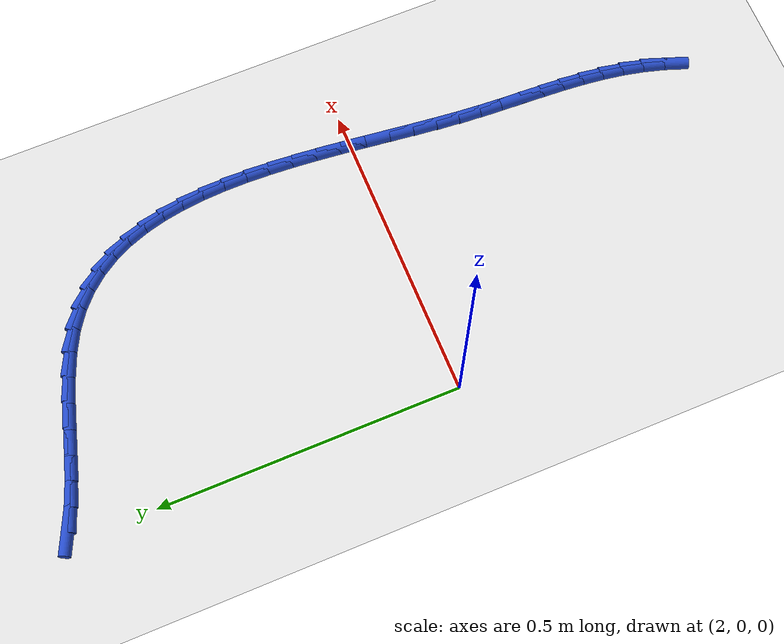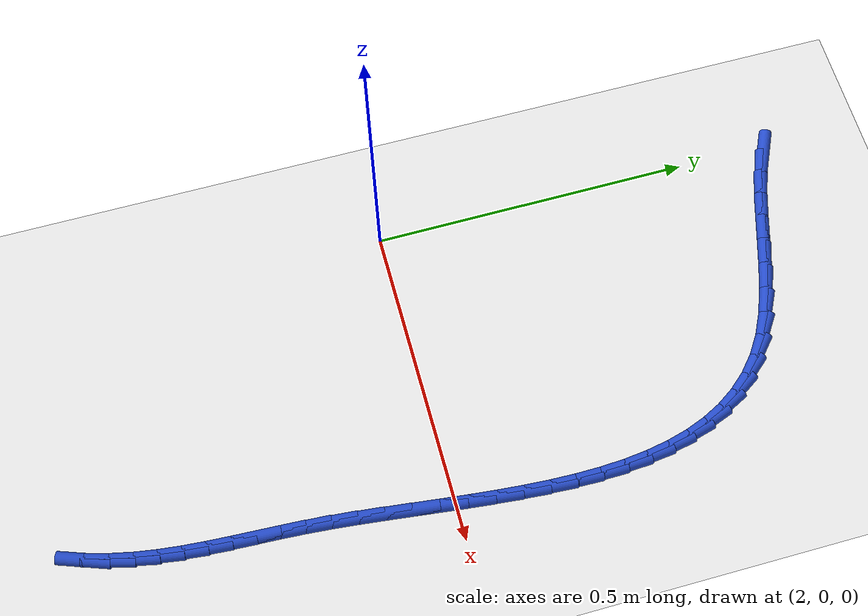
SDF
<sdf version="1.6">
 <world name="default">
  <model name="ground_plane">
   <static>1</static>
   <link name="link">
    <collision name="collision">
     <geometry><plane><normal>0 0 1</normal><size>100 100</size></plane></geometry>
     <surface><friction><ode><mu>100</mu><mu2>50</mu2></ode></friction></surface>
    </collision>
    <visual name="visual">
     <cast_shadows>0</cast_shadows>
     <geometry><plane><normal>0 0 1</normal><size>100 100</size></plane></geometry>
     <material>
      <script><uri>file://media/materials/scripts/gazebo.material</uri><name>Gazebo/WhiteGlow</name></script>
     </material>
    </visual>
   </link>
  </model>
  <model name="line">
   <link name="link_98">
    <pose>2.0180973179045565 0.6346549607675701 0.01 0 1.57 -0.4459626587694435</pose>
    <collision name="collision">
     <geometry><cylinder><radius>0.01</radius><length>0.08</length></cylinder></geometry>
    </collision>
    <visual name="visual">
     <material>
      <script><name>Gazebo/Blue</name><uri>file://media/materials/scripts/gazebo.material</uri></script>
     </material>
     <geometry><cylinder><radius>0.01</radius><length>0.08</length></cylinder></geometry>
    </visual>
   </link>
   <link name="link_99">
    <pose>2.050272561980144 0.6192724493058172 0.01 0 1.57 -0.3610093329036931</pose>
    <collision name="collision">
     <geometry><cylinder><radius>0.01</radius><length>0.08</length></cylinder></geometry>
    </collision>
    <visual name="visual">
     <material>
      <script><name>Gazebo/Blue</name><uri>file://media/materials/scripts/gazebo.material</uri></script>
     </material>
     <geometry><cylinder><radius>0.01</radius><length>0.08</length></cylinder></geometry>
    </visual>
   </link>
   <link name="link_100">
    <pose>2.086365879658592 0.6056452142174706 0.01 0 1.57 -0.3132397381190874</pose>
    <collision name="collision">
     <geometry><cylinder><radius>0.01</radius><length>0.08</length></cylinder></geometry>
    </collision>
    <visual name="visual">
     <material>
      <script><name>Gazebo/Blue</name><uri>file://media/materials/scripts/gazebo.material</uri></script>
     </material>
     <geometry><cylinder><radius>0.01</radius><length>0.08</length></cylinder></geometry>
    </visual>
   </link>
   <link name="link_101">
    <pose>2.1251498153170805 0.593082965775532 0.01 0 1.57 -0.29404023812579166</pose>
    <collision name="collision">
     <geometry><cylinder><radius>0.01</radius><length>0.08</length></cylinder></geometry>
    </collision>
    <visual name="visual">
     <material>
      <script><name>Gazebo/Blue</name><uri>file://media/materials/scripts/gazebo.material</uri></script>
     </material>
     <geometry><cylinder><radius>0.01</radius><length>0.08</length></cylinder></geometry>
    </visual>
   </link>
   <link name="link_102">
    <pose>2.165396913332783 0.5808954142530024 0.01 0 1.57 -0.2995568331293081</pose>
    <collision name="collision">
     <geometry><cylinder><radius>0.01</radius><length>0.08</length></cylinder></geometry>
    </collision>
    <visual name="visual">
     <material>
      <script><name>Gazebo/Blue</name><uri>file://media/materials/scripts/gazebo.material</uri></script>
     </material>
     <geometry><cylinder><radius>0.01</radius><length>0.08</length></cylinder></geometry>
    </visual>
   </link>
   <link name="link_103">
    <pose>2.2058797180828797 0.5683922699228837 0.01 0 1.57 -0.32960012424356866</pose>
    <collision name="collision">
     <geometry><cylinder><radius>0.01</radius><length>0.08</length></cylinder></geometry>
    </collision>
    <visual name="visual">
     <material>
      <script><name>Gazebo/Blue</name><uri>file://media/materials/scripts/gazebo.material</uri></script>
     </material>
     <geometry><cylinder><radius>0.01</radius><length>0.08</length></cylinder></geometry>
    </visual>
   </link>
   <link name="link_104">
    <pose>2.245370773944548 0.5548832430581776 0.01 0 1.57 -0.38734437216024586</pose>
    <collision name="collision">
     <geometry><cylinder><radius>0.01</radius><length>0.08</length></cylinder></geometry>
    </collision>
    <visual name="visual">
     <material>
      <script><name>Gazebo/Blue</name><uri>file://media/materials/scripts/gazebo.material</uri></script>
     </material>
     <geometry><cylinder><radius>0.01</radius><length>0.08</length></cylinder></geometry>
    </visual>
   </link>
   <link name="link_105">
    <pose>2.2826426252949643 0.5396780439318851 0.01 0 1.57 -0.4795261782956209</pose>
    <collision name="collision">
     <geometry><cylinder><radius>0.01</radius><length>0.08</length></cylinder></geometry>
    </collision>
    <visual name="visual">
     <material>
      <script><name>Gazebo/Blue</name><uri>file://media/materials/scripts/gazebo.material</uri></script>
     </material>
     <geometry><cylinder><radius>0.01</radius><length>0.08</length></cylinder></geometry>
    </visual>
   </link>
   <link name="link_106">
    <pose>2.3164698537833024 0.5220875891841386 0.01 0 1.57 -0.6040924827190047</pose>
    <collision name="collision">
     <geometry><cylinder><radius>0.01</radius><length>0.08</length></cylinder></geometry>
    </collision>
    <visual name="visual">
     <material>
      <script><name>Gazebo/Blue</name><uri>file://media/materials/scripts/gazebo.material</uri></script>
     </material>
     <geometry><cylinder><radius>0.01</radius><length>0.08</length></cylinder></geometry>
    </visual>
   </link>
   <link name="link_107">
    <pose>2.346049420376331 0.5016729066460374 0.01 0 1.57 -0.7371939536184274</pose>
    <collision name="collision">
     <geometry><cylinder><radius>0.01</radius><length>0.08</length></cylinder></geometry>
    </collision>
    <visual name="visual">
     <material>
      <script><name>Gazebo/Blue</name><uri>file://media/materials/scripts/gazebo.material</uri></script>
     </material>
     <geometry><cylinder><radius>0.01</radius><length>0.08</length></cylinder></geometry>
    </visual>
   </link>
   <link name="link_108">
    <pose>2.371516036128072 0.47855031126001246 0.01 0 1.57 -0.8703696841595356</pose>
    <collision name="collision">
     <geometry><cylinder><radius>0.01</radius><length>0.08</length></cylinder></geometry>
    </collision>
    <visual name="visual">
     <material>
      <script><name>Gazebo/Blue</name><uri>file://media/materials/scripts/gazebo.material</uri></script>
     </material>
     <geometry><cylinder><radius>0.01</radius><length>0.08</length></cylinder></geometry>
    </visual>
   </link>
   <link name="link_109">
    <pose>2.3931305807400336 0.4529108285174522 0.01 0 1.57 -0.9983051286438389</pose>
    <collision name="collision">
     <geometry><cylinder><radius>0.01</radius><length>0.08</length></cylinder></geometry>
    </collision>
    <visual name="visual">
     <material>
      <script><name>Gazebo/Blue</name><uri>file://media/materials/scripts/gazebo.material</uri></script>
     </material>
     <geometry><cylinder><radius>0.01</radius><length>0.08</length></cylinder></geometry>
    </visual>
   </link>
   <link name="link_110">
    <pose>2.4111539339137256 0.42494548390974357 0.01 0 1.57 -1.1166832887439535</pose>
    <collision name="collision">
     <geometry><cylinder><radius>0.01</radius><length>0.08</length></cylinder></geometry>
    </collision>
    <visual name="visual">
     <material>
      <script><name>Gazebo/Blue</name><uri>file://media/materials/scripts/gazebo.material</uri></script>
     </material>
     <geometry><cylinder><radius>0.01</radius><length>0.08</length></cylinder></geometry>
    </visual>
   </link>
   <link name="link_111">
    <pose>2.4258469753506544 0.3948453029282748 0.01 0 1.57 -1.222818007756879</pose>
    <collision name="collision">
     <geometry><cylinder><radius>0.01</radius><length>0.08</length></cylinder></geometry>
    </collision>
    <visual name="visual">
     <material>
      <script><name>Gazebo/Blue</name><uri>file://media/materials/scripts/gazebo.material</uri></script>
     </material>
     <geometry><cylinder><radius>0.01</radius><length>0.08</length></cylinder></geometry>
    </visual>
   </link>
   <link name="link_112">
    <pose>2.4374705847523304 0.362801311064433 0.01 0 1.57 -1.3156553121021677</pose>
    <collision name="collision">
     <geometry><cylinder><radius>0.01</radius><length>0.08</length></cylinder></geometry>
    </collision>
    <visual name="visual">
     <material>
      <script><name>Gazebo/Blue</name><uri>file://media/materials/scripts/gazebo.material</uri></script>
     </material>
     <geometry><cylinder><radius>0.01</radius><length>0.08</length></cylinder></geometry>
    </visual>
   </link>
   <link name="link_113">
    <pose>2.4462856418202588 0.3290045338096063 0.01 0 1.57 -1.3953660604988931</pose>
    <collision name="collision">
     <geometry><cylinder><radius>0.01</radius><length>0.08</length></cylinder></geometry>
    </collision>
    <visual name="visual">
     <material>
      <script><name>Gazebo/Blue</name><uri>file://media/materials/scripts/gazebo.material</uri></script>
     </material>
     <geometry><cylinder><radius>0.01</radius><length>0.08</length></cylinder></geometry>
    </visual>
   </link>
   <link name="link_114">
    <pose>2.452553026255951 0.2936459966551817 0.01 0 1.57 -1.46284112903791</pose>
    <collision name="collision">
     <geometry><cylinder><radius>0.01</radius><length>0.08</length></cylinder></geometry>
    </collision>
    <visual name="visual">
     <material>
      <script><name>Gazebo/Blue</name><uri>file://media/materials/scripts/gazebo.material</uri></script>
     </material>
     <geometry><cylinder><radius>0.01</radius><length>0.08</length></cylinder></geometry>
    </visual>
   </link>
   <link name="link_115">
    <pose>2.4565336177609125 0.2569167250925477 0.01 0 1.57 -1.5192795431732036</pose>
    <collision name="collision">
     <geometry><cylinder><radius>0.01</radius><length>0.08</length></cylinder></geometry>
    </collision>
    <visual name="visual">
     <material>
      <script><name>Gazebo/Blue</name><uri>file://media/materials/scripts/gazebo.material</uri></script>
     </material>
     <geometry><cylinder><radius>0.01</radius><length>0.08</length></cylinder></geometry>
    </visual>
   </link>
   <link name="link_116">
    <pose>2.4584882960366525 0.21900774461309147 0.01 0 1.57 -1.5659208863089444</pose>
    <collision name="collision">
     <geometry><cylinder><radius>0.01</radius><length>0.08</length></cylinder></geometry>
    </collision>
    <visual name="visual">
     <material>
      <script><name>Gazebo/Blue</name><uri>file://media/materials/scripts/gazebo.material</uri></script>
     </material>
     <geometry><cylinder><radius>0.01</radius><length>0.08</length></cylinder></geometry>
    </visual>
   </link>
   <link name="link_117">
    <pose>2.4586779407846793 0.1801100807081995 0.01 0 1.57 1.5376934613687732</pose>
    <collision name="collision">
     <geometry><cylinder><radius>0.01</radius><length>0.08</length></cylinder></geometry>
    </collision>
    <visual name="visual">
     <material>
      <script><name>Gazebo/Blue</name><uri>file://media/materials/scripts/gazebo.material</uri></script>
     </material>
     <geometry><cylinder><radius>0.01</radius><length>0.08</length></cylinder></geometry>
    </visual>
   </link>
   <link name="link_118">
    <pose>2.4573634317065007 0.14041475886926155 0.01 0 1.57 1.50741584348852</pose>
    <collision name="collision">
     <geometry><cylinder><radius>0.01</radius><length>0.08</length></cylinder></geometry>
    </collision>
    <visual name="visual">
     <material>
      <script><name>Gazebo/Blue</name><uri>file://media/materials/scripts/gazebo.material</uri></script>
     </material>
     <geometry><cylinder><radius>0.01</radius><length>0.08</length></cylinder></geometry>
    </visual>
   </link>
   <link name="link_119">
    <pose>2.4548056485036254 0.10011280458766422 0.01 0 1.57 1.4840696850777066</pose>
    <collision name="collision">
     <geometry><cylinder><radius>0.01</radius><length>0.08</length></cylinder></geometry>
    </collision>
    <visual name="visual">
     <material>
      <script><name>Gazebo/Blue</name><uri>file://media/materials/scripts/gazebo.material</uri></script>
     </material>
     <geometry><cylinder><radius>0.01</radius><length>0.08</length></cylinder></geometry>
    </visual>
   </link>
   <link name="link_120">
    <pose>2.4512654708775607 0.05939524335479519 0.01 0 1.57 1.4670792334637852</pose>
    <collision name="collision">
     <geometry><cylinder><radius>0.01</radius><length>0.08</length></cylinder></geometry>
    </collision>
    <visual name="visual">
     <material>
      <script><name>Gazebo/Blue</name><uri>file://media/materials/scripts/gazebo.material</uri></script>
     </material>
     <geometry><cylinder><radius>0.01</radius><length>0.08</length></cylinder></geometry>
    </visual>
   </link>
   <link name="link_121">
    <pose>2.4470037785298158 0.01845310066204199 0.01 0 1.57 1.4560555061343865</pose>
    <collision name="collision">
     <geometry><cylinder><radius>0.01</radius><length>0.08</length></cylinder></geometry>
    </collision>
    <visual name="visual">
     <material>
      <script><name>Gazebo/Blue</name><uri>file://media/materials/scripts/gazebo.material</uri></script>
     </material>
     <geometry><cylinder><radius>0.01</radius><length>0.08</length></cylinder></geometry>
    </visual>
   </link>
   <link name="link_122">
    <pose>2.442281451161898 -0.022522597999208735 0.01 0 1.57 1.4507903460996678</pose>
    <collision name="collision">
     <geometry><cylinder><radius>0.01</radius><length>0.08</length></cylinder></geometry>
    </collision>
    <visual name="visual">
     <material>
      <script><name>Gazebo/Blue</name><uri>file://media/materials/scripts/gazebo.material</uri></script>
     </material>
     <geometry><cylinder><radius>0.01</radius><length>0.08</length></cylinder></geometry>
    </visual>
   </link>
   <link name="link_123">
    <pose>2.437359368475316 -0.06334082713756731 0.01 0 1.57 1.4512555891345953</pose>
    <collision name="collision">
     <geometry><cylinder><radius>0.01</radius><length>0.08</length></cylinder></geometry>
    </collision>
    <visual name="visual">
     <material>
      <script><name>Gazebo/Blue</name><uri>file://media/materials/scripts/gazebo.material</uri></script>
     </material>
     <geometry><cylinder><radius>0.01</radius><length>0.08</length></cylinder></geometry>
    </visual>
   </link>
   <link name="link_124">
    <pose>2.4324984101715774 -0.10381056126164709 0.01 0 1.57 1.4576099907953437</pose>
    <collision name="collision">
     <geometry><cylinder><radius>0.01</radius><length>0.08</length></cylinder></geometry>
    </collision>
    <visual name="visual">
     <material>
      <script><name>Gazebo/Blue</name><uri>file://media/materials/scripts/gazebo.material</uri></script>
     </material>
     <geometry><cylinder><radius>0.01</radius><length>0.08</length></cylinder></geometry>
    </visual>
   </link>
   <link name="link_125">
    <pose>2.427959455952191 -0.14374077488006054 0.01 0 1.57 1.4702158568787964</pose>
    <collision name="collision">
     <geometry><cylinder><radius>0.01</radius><length>0.08</length></cylinder></geometry>
    </collision>
    <visual name="visual">
     <material>
      <script><name>Gazebo/Blue</name><uri>file://media/materials/scripts/gazebo.material</uri></script>
     </material>
     <geometry><cylinder><radius>0.01</radius><length>0.08</length></cylinder></geometry>
    </visual>
   </link>
   <link name="link_126">
    <pose>2.424003385518665 -0.18294044250142089 0.01 0 1.57 1.4895362755988155</pose>
    <collision name="collision">
     <geometry><cylinder><radius>0.01</radius><length>0.08</length></cylinder></geometry>
    </collision>
    <visual name="visual">
     <material>
      <script><name>Gazebo/Blue</name><uri>file://media/materials/scripts/gazebo.material</uri></script>
     </material>
     <geometry><cylinder><radius>0.01</radius><length>0.08</length></cylinder></geometry>
    </visual>
   </link>
   <link name="link_127">
    <pose>2.420885824722344 -0.22122119390386757 0.01 0 1.57 1.5097120214336825</pose>
    <collision name="collision">
     <geometry><cylinder><radius>0.01</radius><length>0.08</length></cylinder></geometry>
    </collision>
    <visual name="visual">
     <material>
      <script><name>Gazebo/Blue</name><uri>file://media/materials/scripts/gazebo.material</uri></script>
     </material>
     <geometry><cylinder><radius>0.01</radius><length>0.08</length></cylinder></geometry>
    </visual>
   </link>
   <link name="link_128">
    <pose>2.418604303186794 -0.25852509940493845 0.01 0 1.57 1.5209638857971495</pose>
    <collision name="collision">
     <geometry><cylinder><radius>0.01</radius><length>0.08</length></cylinder></geometry>
    </collision>
    <visual name="visual">
     <material>
      <script><name>Gazebo/Blue</name><uri>file://media/materials/scripts/gazebo.material</uri></script>
     </material>
     <geometry><cylinder><radius>0.01</radius><length>0.08</length></cylinder></geometry>
    </visual>
   </link>
   <link name="link_129">
    <pose>2.416786093681333 -0.29498135527980207 0.01 0 1.57 1.5217135580904135</pose>
    <collision name="collision">
     <geometry><cylinder><radius>0.01</radius><length>0.08</length></cylinder></geometry>
    </collision>
    <visual name="visual">
     <material>
      <script><name>Gazebo/Blue</name><uri>file://media/materials/scripts/gazebo.material</uri></script>
     </material>
     <geometry><cylinder><radius>0.01</radius><length>0.08</length></cylinder></geometry>
    </visual>
   </link>
   <link name="link_130">
    <pose>2.4150298632380416 -0.3307336149997882 0.01 0 1.57 1.5113192399391746</pose>
    <collision name="collision">
     <geometry><cylinder><radius>0.01</radius><length>0.08</length></cylinder></geometry>
    </collision>
    <visual name="visual">
     <material>
      <script><name>Gazebo/Blue</name><uri>file://media/materials/scripts/gazebo.material</uri></script>
     </material>
     <geometry><cylinder><radius>0.01</radius><length>0.08</length></cylinder></geometry>
    </visual>
   </link>
   <link name="link_131">
    <pose>2.4129342788890082 -0.3659255320362278 0.01 0 1.57 1.4894163510093</pose>
    <collision name="collision">
     <geometry><cylinder><radius>0.01</radius><length>0.08</length></cylinder></geometry>
    </collision>
    <visual name="visual">
     <material>
      <script><name>Gazebo/Blue</name><uri>file://media/materials/scripts/gazebo.material</uri></script>
     </material>
     <geometry><cylinder><radius>0.01</radius><length>0.08</length></cylinder></geometry>
    </visual>
   </link>
   <link name="link_132">
    <pose>2.410098007666318 -0.4007007598604492 0.01 0 1.57 1.4559978393256405</pose>
    <collision name="collision">
     <geometry><cylinder><radius>0.01</radius><length>0.08</length></cylinder></geometry>
    </collision>
    <visual name="visual">
     <material>
      <script><name>Gazebo/Blue</name><uri>file://media/materials/scripts/gazebo.material</uri></script>
     </material>
     <geometry><cylinder><radius>0.01</radius><length>0.08</length></cylinder></geometry>
    </visual>
   </link>
   <link name="link_133">
    <pose>2.406119716602058 -0.4352029519437834 0.01 0 1.57 1.4115172238301645</pose>
    <collision name="collision">
     <geometry><cylinder><radius>0.01</radius><length>0.08</length></cylinder></geometry>
    </collision>
    <visual name="visual">
     <material>
      <script><name>Gazebo/Blue</name><uri>file://media/materials/scripts/gazebo.material</uri></script>
     </material>
     <geometry><cylinder><radius>0.01</radius><length>0.08</length></cylinder></geometry>
    </visual>
   </link>
   <link name="link_134">
    <pose>2.400598072728315 -0.4695757617575605 0.01 0 1.57 1.3569889810165463</pose>
    <collision name="collision">
     <geometry><cylinder><radius>0.01</radius><length>0.08</length></cylinder></geometry>
    </collision>
    <visual name="visual">
     <material>
      <script><name>Gazebo/Blue</name><uri>file://media/materials/scripts/gazebo.material</uri></script>
     </material>
     <geometry><cylinder><radius>0.01</radius><length>0.08</length></cylinder></geometry>
    </visual>
   </link>
   <link name="link_135">
    <pose>2.393131743077174 -0.5039628427731115 0.01 0 1.57 1.2940445066319721</pose>
    <collision name="collision">
     <geometry><cylinder><radius>0.01</radius><length>0.08</length></cylinder></geometry>
    </collision>
    <visual name="visual">
     <material>
      <script><name>Gazebo/Blue</name><uri>file://media/materials/scripts/gazebo.material</uri></script>
     </material>
     <geometry><cylinder><radius>0.01</radius><length>0.08</length></cylinder></geometry>
    </visual>
   </link>
   <link name="link_136">
    <pose>2.383319638362972 -0.5385075406794393 0.01 0 1.57 1.2266295572539165</pose>
    <collision name="collision">
     <geometry><cylinder><radius>0.01</radius><length>0.08</length></cylinder></geometry>
    </collision>
    <visual name="visual">
     <material>
      <script><name>Gazebo/Blue</name><uri>file://media/materials/scripts/gazebo.material</uri></script>
     </material>
     <geometry><cylinder><radius>0.01</radius><length>0.08</length></cylinder></geometry>
    </visual>
   </link>
  </model>
 </world>
</sdf>
